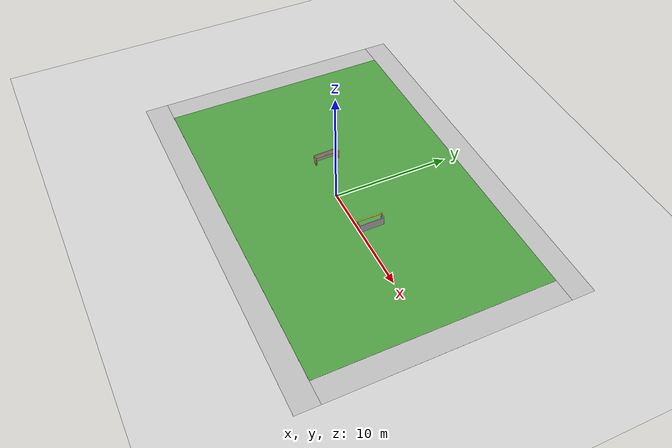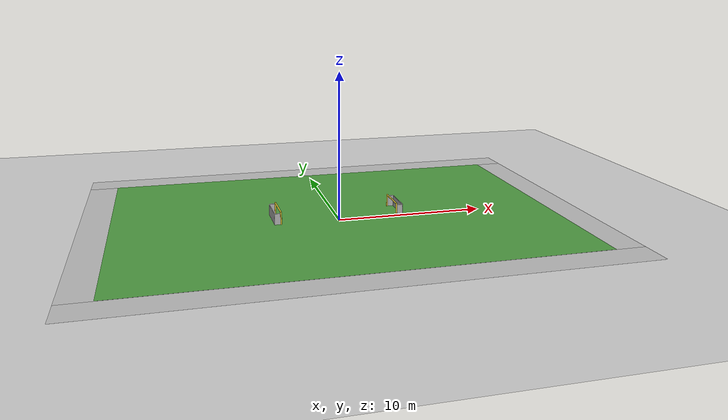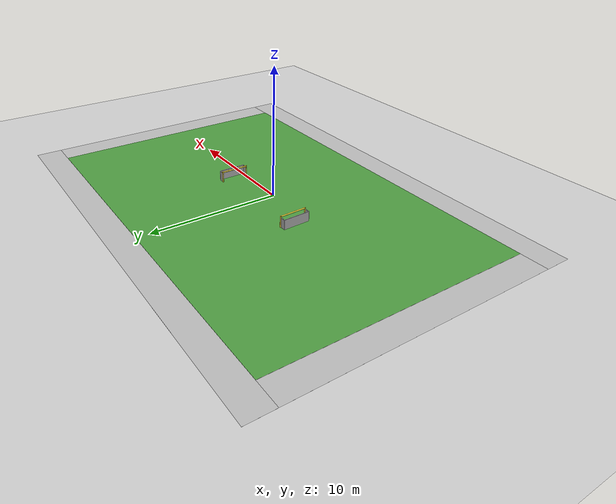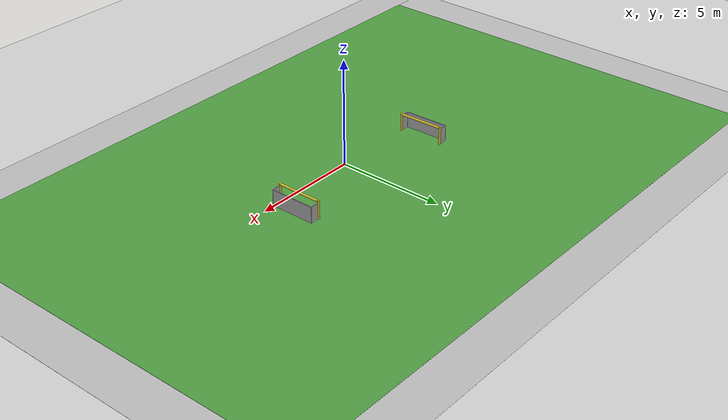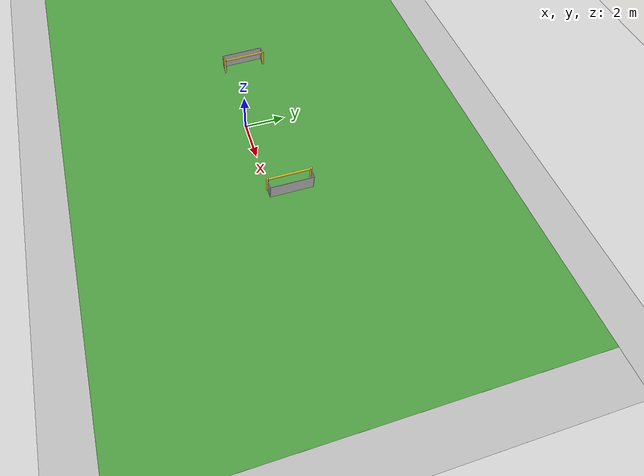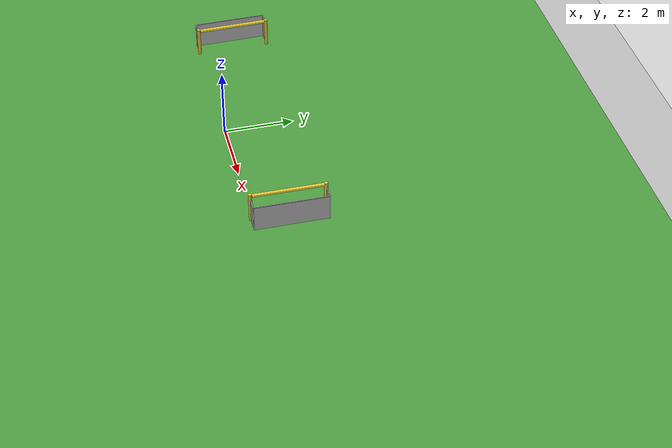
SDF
<sdf version="1.4">
 <world name="default">
  <light name="sun" type="directional">
   <pose>0 0 10 0 -0 0</pose>
   <diffuse>1 1 1 1</diffuse>
   <specular>0.2 0.2 0.2 1</specular>
   <attenuation>
    <range>1000</range>
    <constant>0.9</constant>
    <linear>0.01</linear>
    <quadratic>0.001</quadratic>
   </attenuation>
   <direction>-0.5 0.1 -0.9</direction>
  </light>
  <model name="ground_plane">
   <static>1</static>
   <link name="link">
    <collision name="collision">
     <geometry><plane><normal>0 0 1</normal><size>100 100</size></plane></geometry>
     <surface><friction><ode><mu>100</mu><mu2>50</mu2></ode></friction></surface>
    </collision>
    <visual name="visual">
     <cast_shadows>0</cast_shadows>
     <geometry><plane><normal>0 0 1</normal><size>100 100</size></plane></geometry>
     <material>
      <script><uri>file://media/materials/scripts/gazebo.material</uri><name>Gazebo/Grey</name></script>
     </material>
    </visual>
    <velocity_decay><linear>0</linear><angular>0</angular></velocity_decay>
   </link>
  </model>
  <physics type="ode">
   <max_step_size>0.001</max_step_size>
   <real_time_factor>1</real_time_factor>
   <real_time_update_rate>1000</real_time_update_rate>
   <gravity>0 0 -9.8</gravity>
  </physics>
  <scene><ambient>0.4 0.4 0.4 1</ambient><background>0.7 0.7 0.7 1</background><shadows>1</shadows></scene>
  <spherical_coordinates>
   <surface_model>EARTH_WGS84</surface_model>
   <latitude_deg>0</latitude_deg>
   <longitude_deg>0</longitude_deg>
   <elevation>0</elevation>
   <heading_deg>0</heading_deg>
  </spherical_coordinates>
  <model name="robocup_field">
   <pose>0 1 0 0 -0 0</pose>
   <static>true</static>
   <link name="field">
    <pose>0 0 0.01 0 0 0</pose>
    <collision name="collision">
     <geometry><plane><normal>0 0 1</normal><size>30.0 20.0</size></plane></geometry>
     <surface><friction><ode><mu>100</mu><mu2>50</mu2></ode></friction></surface>
    </collision>
    <visual name="base1">
     <pose>0 11 0.001 0 0 0</pose>
     <cast_shadows>false</cast_shadows>
     <geometry><plane><normal>0 0 1</normal><size>34.0 2.0</size></plane></geometry>
     <material>
      <script>
       <uri>model://robocup_3Dsim_field/materials/scripts/</uri>
       <uri>model://robocup_3Dsim_field/materials/textures/</uri>
       <name>RoboCup/FieldBorder</name>
      </script>
     </material>
    </visual>
    <visual name="base2">
     <pose>0 -11 0.001 0 0 0</pose>
     <cast_shadows>false</cast_shadows>
     <geometry><plane><normal>0 0 1</normal><size>34.0 2.0</size></plane></geometry>
     <material>
      <script>
       <uri>model://robocup_3Dsim_field/materials/scripts/</uri>
       <uri>model://robocup_3Dsim_field/materials/textures/</uri>
       <name>RoboCup/FieldBorder</name>
      </script>
     </material>
    </visual>
    <visual name="base3">
     <pose>16 0 0.001 0 0 0</pose>
     <cast_shadows>false</cast_shadows>
     <geometry><plane><normal>0 0 1</normal><size>2.0 20.0</size></plane></geometry>
     <material>
      <script>
       <uri>model://robocup_3Dsim_field/materials/scripts/</uri>
       <uri>model://robocup_3Dsim_field/materials/textures/</uri>
       <name>RoboCup/FieldBorder</name>
      </script>
     </material>
    </visual>
    <visual name="base4">
     <pose>-16 0 0.001 0 0 0</pose>
     <cast_shadows>false</cast_shadows>
     <geometry><plane><normal>0 0 1</normal><size>2.0 20.0</size></plane></geometry>
     <material>
      <script>
       <uri>model://robocup_3Dsim_field/materials/scripts/</uri>
       <uri>model://robocup_3Dsim_field/materials/textures/</uri>
       <name>RoboCup/FieldBorder</name>
      </script>
     </material>
    </visual>
    <visual name="carpet">
     <cast_shadows>false</cast_shadows>
     <geometry><plane><normal>0 0 1</normal><size>30.0 20.0</size></plane></geometry>
     <material>
      <script>
       <uri>model://robocup_3Dsim_field/materials/scripts/</uri>
       <uri>model://robocup_3Dsim_field/materials/textures/</uri>
       <name>RoboCup/Grass</name>
      </script>
     </material>
    </visual>
   </link>
  </model>
  <model name="RoboCup_goal_1">
   <static>1</static>
   <link name="left_post">
    <pose>0 1.05 0.45 0 -0 0</pose>
    <collision name="collision">
     <geometry><cylinder><radius>0.05</radius><length>0.9</length></cylinder></geometry>
    </collision>
    <visual name="visual">
     <geometry><cylinder><radius>0.05</radius><length>0.9</length></cylinder></geometry>
     <material>
      <script><uri>file://media/materials/scripts/gazebo.material</uri><name>Gazebo/ZincYellow</name></script>
     </material>
    </visual>
    <velocity_decay><linear>0</linear><angular>0</angular></velocity_decay>
   </link>
   <link name="left_support_horiz_lower">
    <pose>0.24 1.05 0.01 0 -0 0</pose>
    <collision name="collision"><geometry><box><size>0.38 0.02 0.02</size></box></geometry></collision>
    <visual name="visual">
     <geometry><box><size>0.38 0.02 0.02</size></box></geometry>
     <material>
      <script><uri>file://media/materials/scripts/gazebo.material</uri><name>Gazebo/White</name></script>
     </material>
    </visual>
    <velocity_decay><linear>0</linear><angular>0</angular></velocity_decay>
   </link>
   <link name="left_support_horiz_upper">
    <pose>0.24 1.05 0.79 0 -0 0</pose>
    <collision name="collision"><geometry><box><size>0.38 0.02 0.02</size></box></geometry></collision>
    <visual name="visual">
     <geometry><box><size>0.38 0.02 0.02</size></box></geometry>
     <material>
      <script><uri>file://media/materials/scripts/gazebo.material</uri><name>Gazebo/White</name></script>
     </material>
    </visual>
    <velocity_decay><linear>0</linear><angular>0</angular></velocity_decay>
   </link>
   <link name="left_support_vertical">
    <pose>0.44 1.05 0.4 3.14159 1.57079 3.14159</pose>
    <collision name="collision"><geometry><box><size>0.8 0.02 0.02</size></box></geometry></collision>
    <visual name="visual">
     <geometry><box><size>0.8 0.02 0.02</size></box></geometry>
     <material>
      <script><uri>file://media/materials/scripts/gazebo.material</uri><name>Gazebo/White</name></script>
     </material>
    </visual>
    <velocity_decay><linear>0</linear><angular>0</angular></velocity_decay>
   </link>
   <link name="right_support_horiz_lower">
    <pose>0.24 -1.05 0.01 0 -0 0</pose>
    <collision name="collision"><geometry><box><size>0.38 0.02 0.02</size></box></geometry></collision>
    <visual name="visual">
     <geometry><box><size>0.38 0.02 0.02</size></box></geometry>
     <material>
      <script><uri>file://media/materials/scripts/gazebo.material</uri><name>Gazebo/White</name></script>
     </material>
    </visual>
    <velocity_decay><linear>0</linear><angular>0</angular></velocity_decay>
   </link>
   <link name="right_support_horiz_upper">
    <pose>0.24 -1.05 0.79 0 -0 0</pose>
    <collision name="collision"><geometry><box><size>0.38 0.02 0.02</size></box></geometry></collision>
    <visual name="visual">
     <geometry><box><size>0.38 0.02 0.02</size></box></geometry>
     <material>
      <script><uri>file://media/materials/scripts/gazebo.material</uri><name>Gazebo/White</name></script>
     </material>
    </visual>
    <velocity_decay><linear>0</linear><angular>0</angular></velocity_decay>
   </link>
   <link name="right_support_vertical">
    <pose>0.44 -1.05 0.4 3.14159 1.57079 3.14159</pose>
    <collision name="collision"><geometry><box><size>0.8 0.02 0.02</size></box></geometry></collision>
    <visual name="visual">
     <geometry><box><size>0.8 0.02 0.02</size></box></geometry>
     <material>
      <script><uri>file://media/materials/scripts/gazebo.material</uri><name>Gazebo/White</name></script>
     </material>
    </visual>
    <velocity_decay><linear>0</linear><angular>0</angular></velocity_decay>
   </link>
   <link name="center_support_horiz_lower">
    <pose>0.44 0 0.01 3.14159 1.57079 3.14159</pose>
    <collision name="collision"><geometry><box><size>0.02 2.08 0.02</size></box></geometry></collision>
    <visual name="visual">
     <geometry><box><size>0.02 2.08 0.02</size></box></geometry>
     <material>
      <script><uri>file://media/materials/scripts/gazebo.material</uri><name>Gazebo/White</name></script>
     </material>
    </visual>
    <velocity_decay><linear>0</linear><angular>0</angular></velocity_decay>
   </link>
   <link name="center_support_horiz_upper">
    <pose>0.44 0 0.79 3.14159 1.57079 3.14159</pose>
    <collision name="collision"><geometry><box><size>0.02 2.08 0.02</size></box></geometry></collision>
    <visual name="visual">
     <geometry><box><size>0.02 2.08 0.02</size></box></geometry>
     <material>
      <script><uri>file://media/materials/scripts/gazebo.material</uri><name>Gazebo/White</name></script>
     </material>
    </visual>
    <velocity_decay><linear>0</linear><angular>0</angular></velocity_decay>
   </link>
   <link name="right_post">
    <pose>0 -1.05 0.45 0 -0 0</pose>
    <collision name="collision">
     <geometry><cylinder><radius>0.05</radius><length>0.9</length></cylinder></geometry>
    </collision>
    <visual name="visual">
     <geometry><cylinder><radius>0.05</radius><length>0.9</length></cylinder></geometry>
     <material>
      <script><uri>file://media/materials/scripts/gazebo.material</uri><name>Gazebo/ZincYellow</name></script>
     </material>
    </visual>
    <velocity_decay><linear>0</linear><angular>0</angular></velocity_decay>
   </link>
   <link name="crossbar">
    <pose>0 0 0.85 1.57 1.57 1.39418e-13</pose>
    <collision name="collision">
     <geometry><cylinder><radius>0.05</radius><length>2</length></cylinder></geometry>
    </collision>
    <visual name="visual">
     <geometry><cylinder><radius>0.05</radius><length>2</length></cylinder></geometry>
     <material>
      <script><uri>file://media/materials/scripts/gazebo.material</uri><name>Gazebo/ZincYellow</name></script>
     </material>
    </visual>
    <velocity_decay><linear>0</linear><angular>0</angular></velocity_decay>
   </link>
   <link name="center_net">
    <pose>0.44 0 0.4 0 -0 0</pose>
    <collision name="collision"><geometry><box><size>0.01 2.1 0.8</size></box></geometry></collision>
    <visual name="visual">
     <geometry><box><size>0.01 2.1 0.8</size></box></geometry>
     <material>
      <script>
       <uri>model://robocup09_spl_field/materials/scripts/</uri>
       <uri>model://robocup09_spl_field/materials/textures/</uri>
       <name>RoboCup/Net</name>
      </script>
     </material>
    </visual>
    <velocity_decay><linear>0</linear><angular>0</angular></velocity_decay>
   </link>
   <link name="left_net">
    <pose>0.24 1.05 0.4 0 -0 0</pose>
    <collision name="collision"><geometry><box><size>0.38 0.01 0.76</size></box></geometry></collision>
    <visual name="visual">
     <geometry><box><size>0.38 0.01 0.76</size></box></geometry>
     <material>
      <script>
       <uri>model://robocup09_spl_field/materials/scripts/</uri>
       <uri>model://robocup09_spl_field/materials/textures/</uri>
       <name>RoboCup/Net</name>
      </script>
     </material>
    </visual>
    <velocity_decay><linear>0</linear><angular>0</angular></velocity_decay>
   </link>
   <link name="right_net">
    <pose>0.24 -1.05 0.4 0 -0 0</pose>
    <collision name="collision"><geometry><box><size>0.38 0.01 0.76</size></box></geometry></collision>
    <visual name="visual">
     <geometry><box><size>0.38 0.01 0.76</size></box></geometry>
     <material>
      <script>
       <uri>model://robocup09_spl_field/materials/scripts/</uri>
       <uri>model://robocup09_spl_field/materials/textures/</uri>
       <name>RoboCup/Net</name>
      </script>
     </material>
    </visual>
    <velocity_decay><linear>0</linear><angular>0</angular></velocity_decay>
   </link>
   <pose>4 1 0 0 -0 0</pose>
  </model>
  <model name="RoboCup_goal_0">
   <static>1</static>
   <link name="left_post">
    <pose>0 1.05 0.45 0 -0 0</pose>
    <collision name="collision">
     <geometry><cylinder><radius>0.05</radius><length>0.9</length></cylinder></geometry>
    </collision>
    <visual name="visual">
     <geometry><cylinder><radius>0.05</radius><length>0.9</length></cylinder></geometry>
     <material>
      <script><uri>file://media/materials/scripts/gazebo.material</uri><name>Gazebo/ZincYellow</name></script>
     </material>
    </visual>
    <velocity_decay><linear>0</linear><angular>0</angular></velocity_decay>
   </link>
   <link name="left_support_horiz_lower">
    <pose>0.24 1.05 0.01 0 -0 0</pose>
    <collision name="collision"><geometry><box><size>0.38 0.02 0.02</size></box></geometry></collision>
    <visual name="visual">
     <geometry><box><size>0.38 0.02 0.02</size></box></geometry>
     <material>
      <script><uri>file://media/materials/scripts/gazebo.material</uri><name>Gazebo/White</name></script>
     </material>
    </visual>
    <velocity_decay><linear>0</linear><angular>0</angular></velocity_decay>
   </link>
   <link name="left_support_horiz_upper">
    <pose>0.24 1.05 0.79 0 -0 0</pose>
    <collision name="collision"><geometry><box><size>0.38 0.02 0.02</size></box></geometry></collision>
    <visual name="visual">
     <geometry><box><size>0.38 0.02 0.02</size></box></geometry>
     <material>
      <script><uri>file://media/materials/scripts/gazebo.material</uri><name>Gazebo/White</name></script>
     </material>
    </visual>
    <velocity_decay><linear>0</linear><angular>0</angular></velocity_decay>
   </link>
   <link name="left_support_vertical">
    <pose>0.44 1.05 0.4 3.14159 1.57079 3.14159</pose>
    <collision name="collision"><geometry><box><size>0.8 0.02 0.02</size></box></geometry></collision>
    <visual name="visual">
     <geometry><box><size>0.8 0.02 0.02</size></box></geometry>
     <material>
      <script><uri>file://media/materials/scripts/gazebo.material</uri><name>Gazebo/White</name></script>
     </material>
    </visual>
    <velocity_decay><linear>0</linear><angular>0</angular></velocity_decay>
   </link>
   <link name="right_support_horiz_lower">
    <pose>0.24 -1.05 0.01 0 -0 0</pose>
    <collision name="collision"><geometry><box><size>0.38 0.02 0.02</size></box></geometry></collision>
    <visual name="visual">
     <geometry><box><size>0.38 0.02 0.02</size></box></geometry>
     <material>
      <script><uri>file://media/materials/scripts/gazebo.material</uri><name>Gazebo/White</name></script>
     </material>
    </visual>
    <velocity_decay><linear>0</linear><angular>0</angular></velocity_decay>
   </link>
   <link name="right_support_horiz_upper">
    <pose>0.24 -1.05 0.79 0 -0 0</pose>
    <collision name="collision"><geometry><box><size>0.38 0.02 0.02</size></box></geometry></collision>
    <visual name="visual">
     <geometry><box><size>0.38 0.02 0.02</size></box></geometry>
     <material>
      <script><uri>file://media/materials/scripts/gazebo.material</uri><name>Gazebo/White</name></script>
     </material>
    </visual>
    <velocity_decay><linear>0</linear><angular>0</angular></velocity_decay>
   </link>
   <link name="right_support_vertical">
    <pose>0.44 -1.05 0.4 3.14159 1.57079 3.14159</pose>
    <collision name="collision"><geometry><box><size>0.8 0.02 0.02</size></box></geometry></collision>
    <visual name="visual">
     <geometry><box><size>0.8 0.02 0.02</size></box></geometry>
     <material>
      <script><uri>file://media/materials/scripts/gazebo.material</uri><name>Gazebo/White</name></script>
     </material>
    </visual>
    <velocity_decay><linear>0</linear><angular>0</angular></velocity_decay>
   </link>
   <link name="center_support_horiz_lower">
    <pose>0.44 0 0.01 3.14159 1.57079 3.14159</pose>
    <collision name="collision"><geometry><box><size>0.02 2.08 0.02</size></box></geometry></collision>
    <visual name="visual">
     <geometry><box><size>0.02 2.08 0.02</size></box></geometry>
     <material>
      <script><uri>file://media/materials/scripts/gazebo.material</uri><name>Gazebo/White</name></script>
     </material>
    </visual>
    <velocity_decay><linear>0</linear><angular>0</angular></velocity_decay>
   </link>
   <link name="center_support_horiz_upper">
    <pose>0.44 0 0.79 3.14159 1.57079 3.14159</pose>
    <collision name="collision"><geometry><box><size>0.02 2.08 0.02</size></box></geometry></collision>
    <visual name="visual">
     <geometry><box><size>0.02 2.08 0.02</size></box></geometry>
     <material>
      <script><uri>file://media/materials/scripts/gazebo.material</uri><name>Gazebo/White</name></script>
     </material>
    </visual>
    <velocity_decay><linear>0</linear><angular>0</angular></velocity_decay>
   </link>
   <link name="right_post">
    <pose>0 -1.05 0.45 0 -0 0</pose>
    <collision name="collision">
     <geometry><cylinder><radius>0.05</radius><length>0.9</length></cylinder></geometry>
    </collision>
    <visual name="visual">
     <geometry><cylinder><radius>0.05</radius><length>0.9</length></cylinder></geometry>
     <material>
      <script><uri>file://media/materials/scripts/gazebo.material</uri><name>Gazebo/ZincYellow</name></script>
     </material>
    </visual>
    <velocity_decay><linear>0</linear><angular>0</angular></velocity_decay>
   </link>
   <link name="crossbar">
    <pose>0 0 0.85 1.57 1.57 1.39418e-13</pose>
    <collision name="collision">
     <geometry><cylinder><radius>0.05</radius><length>2</length></cylinder></geometry>
    </collision>
    <visual name="visual">
     <geometry><cylinder><radius>0.05</radius><length>2</length></cylinder></geometry>
     <material>
      <script><uri>file://media/materials/scripts/gazebo.material</uri><name>Gazebo/ZincYellow</name></script>
     </material>
    </visual>
    <velocity_decay><linear>0</linear><angular>0</angular></velocity_decay>
   </link>
   <link name="center_net">
    <pose>0.44 0 0.4 0 -0 0</pose>
    <collision name="collision"><geometry><box><size>0.01 2.1 0.8</size></box></geometry></collision>
    <visual name="visual">
     <geometry><box><size>0.01 2.1 0.8</size></box></geometry>
     <material>
      <script>
       <uri>model://robocup09_spl_field/materials/scripts/</uri>
       <uri>model://robocup09_spl_field/materials/textures/</uri>
       <name>RoboCup/Net</name>
      </script>
     </material>
    </visual>
    <velocity_decay><linear>0</linear><angular>0</angular></velocity_decay>
   </link>
   <link name="left_net">
    <pose>0.24 1.05 0.4 0 -0 0</pose>
    <collision name="collision"><geometry><box><size>0.38 0.01 0.76</size></box></geometry></collision>
    <visual name="visual">
     <geometry><box><size>0.38 0.01 0.76</size></box></geometry>
     <material>
      <script>
       <uri>model://robocup09_spl_field/materials/scripts/</uri>
       <uri>model://robocup09_spl_field/materials/textures/</uri>
       <name>RoboCup/Net</name>
      </script>
     </material>
    </visual>
    <velocity_decay><linear>0</linear><angular>0</angular></velocity_decay>
   </link>
   <link name="right_net">
    <pose>0.24 -1.05 0.4 0 -0 0</pose>
    <collision name="collision"><geometry><box><size>0.38 0.01 0.76</size></box></geometry></collision>
    <visual name="visual">
     <geometry><box><size>0.38 0.01 0.76</size></box></geometry>
     <material>
      <script>
       <uri>model://robocup09_spl_field/materials/scripts/</uri>
       <uri>model://robocup09_spl_field/materials/textures/</uri>
       <name>RoboCup/Net</name>
      </script>
     </material>
    </visual>
    <velocity_decay><linear>0</linear><angular>0</angular></velocity_decay>
   </link>
   <pose>-3.99646 1.02963 0 0 0 -3.11404</pose>
  </model>
  <model name="football">
   <static>0</static>
   <pose>0 1 0.01 0 -0 0</pose>
   <link name="link">
    <inertial>
     <mass>0.41</mass>
     <inertia><ixx>3.2e-03</ixx><iyy>3.2e-03</iyy><izz>3.2e-03</izz><ixy>0</ixy><ixz>0</ixz><iyz>0</iyz></inertia>
    </inertial>
    <collision name="collision">
     <geometry><sphere><radius>0.07</radius></sphere></geometry>
     <surface>
      <bounce><restitution_coefficient>0.05</restitution_coefficient><threshold>10</threshold></bounce>
      <friction>
       <torsional>
        <coefficient>1.0</coefficient>
        <use_patch_radius>true</use_patch_radius>
        <patch_radius>0.05</patch_radius>
       </torsional>
       <ode><mu>1</mu><mu2>1</mu2></ode>
      </friction>
      <contact><ode><max_vel>5</max_vel></ode></contact>
     </surface>
    </collision>
    <visual name="visual">
     <geometry>
      <mesh><scale>0.07 0.07 0.07</scale><uri>model://robocup_3Dsim_ball/meshes/ball.dae</uri></mesh>
     </geometry>
    </visual>
    <sensor name="contact" type="contact">
     <plugin name="contact" filename="libgazebo_ros_bumper.so">
      <robotNamespace>football</robotNamespace>
      <frameName>world</frameName>
     </plugin>
     <contact><collision>collision</collision></contact>
    </sensor>
   </link>
   <plugin name="ball_gazebo" filename="libball_gazebo.so"/>
  </model>
 </world>
</sdf>
